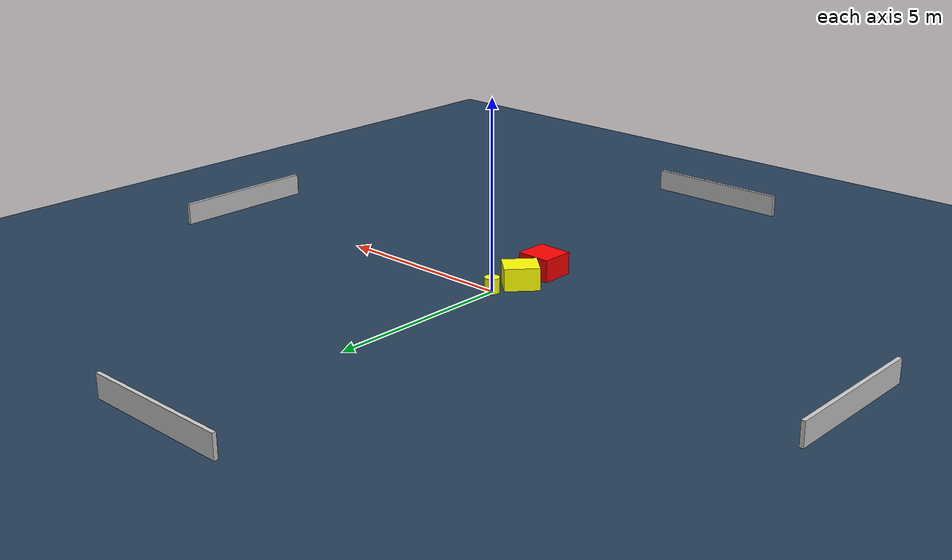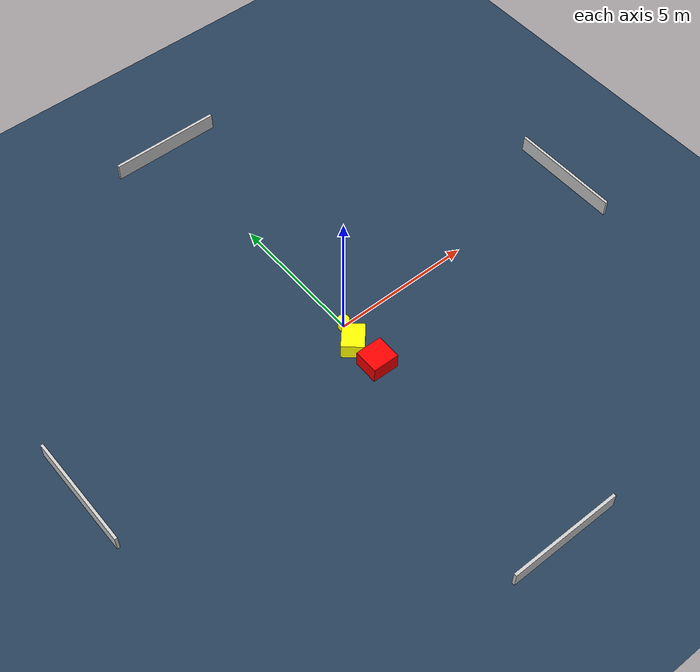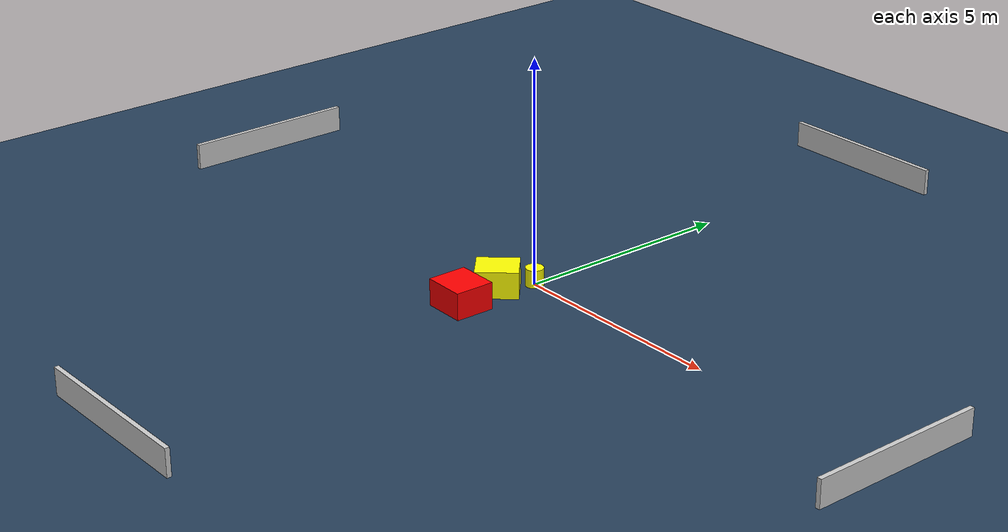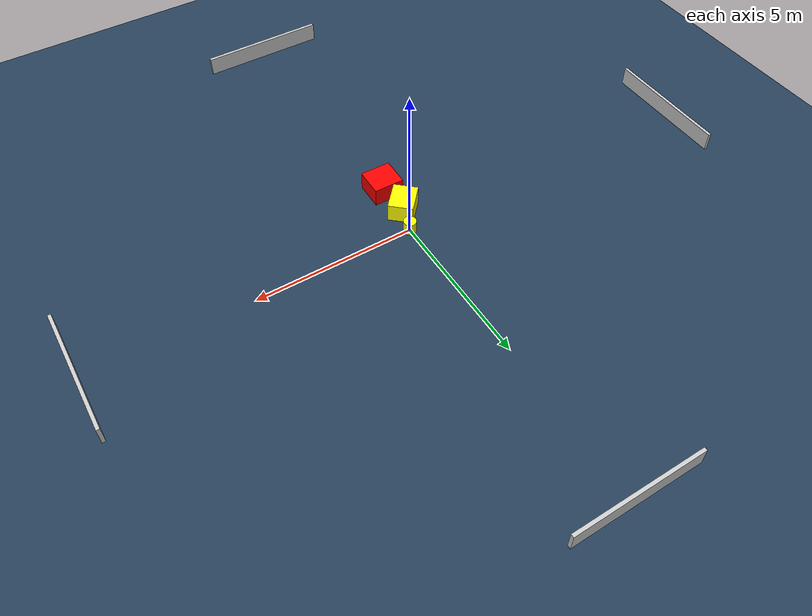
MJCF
<?xml version="1.0" ?>
<mujoco model="generated_environment">
  <option timestep="0.01" integrator="RK4" cone="elliptic"/>
  <default>
    <geom density="1"/>
  </default>
  <asset>
    <texture builtin="gradient" height="3072" name="skybox" rgb1="0.3 0.5 0.7" rgb2="0 0 0" type="skybox" width="512"/>
    <texture builtin="checker" height="300" name="groundplane" rgb1="0.2 0.3 0.4" rgb2="0.1 0.2 0.3" type="2d" width="300"/>
    <material name="groundplane" reflectance="0.2" texrepeat="5 5" texture="groundplane"/>
  </asset>
  <worldbody>
    <light dir="0 0 -1" directional="true" pos="0 0 1.5"/>
    <geom condim="3" friction="0.5 0.005 0.001" material="groundplane" name="floor" pos="0 0 0" size="0 0 0.05" type="plane"/>
    <body name="walls">
      <geom name="wall_1" condim="4" pos="-10.0 0.0 0.3" rgba="0.800000011920929 0.800000011920929 0.800000011920929 1.0" size="0.05 2.0 0.3" type="box"/>
      <geom name="wall_2" condim="4" pos="10.0 0.0 0.3" rgba="0.800000011920929 0.800000011920929 0.800000011920929 1.0" size="0.05 2.0 0.3" type="box"/>
      <geom name="wall_3" condim="4" pos="0.0 -10.0 0.3" rgba="0.800000011920929 0.800000011920929 0.800000011920929 1.0" size="2.0 0.05 0.3" type="box"/>
      <geom name="wall_4" condim="4" pos="0.0 10.0 0.3" rgba="0.800000011920929 0.800000011920929 0.800000011920929 1.0" size="2.0 0.05 0.3" type="box"/>
    </body>
    <body name="robot">
      <joint name="joint_x" type="slide" pos="0 0 0" axis="1 0 0"/>
      <joint name="joint_y" type="slide" pos="0 0 0" axis="0 1 0"/>
      <geom name="robot" type="cylinder" pos="0.0 0.0 0.2" size="0.2 0.2 0.0" mass="5.0" friction="1.0 0.005 0.0001" condim="4" rgba="1.0 1.0 0.0 1.0"/>
    </body>
    <body name="obstacle_1_movable">
      <geom name="obstacle_1_movable" condim="4" pos="-0.25162228649451285 -0.7916238412631446 0.3" euler="0 0 317.93301909103076" friction="0.0 0.005 0.001" rgba="1.0 1.0 0.0 1.0" size="0.38307404680745294 0.4625120727278535 0.3" type="box" mass="0.1"/>
      <joint type="free"/>
    </body>
    <body name="obstacle_2_static">
      <geom name="obstacle_2_static" condim="4" pos="-0.13936780527257087 -1.8399140176009001 0.3" euler="0 0 359.18237597833445" friction="0.0 0.005 0.001" rgba="1.0 0.0 0.0 1.0" size="0.473381374651289 0.441625405212459 0.3" type="box"/>
    </body>
  </worldbody>
  <actuator>
    <motor name="actuator_x" joint="joint_x" gear="1" ctrlrange="-1 1"/>
    <motor name="actuator_y" joint="joint_y" gear="1" ctrlrange="-1 1"/>
  </actuator>
</mujoco>
